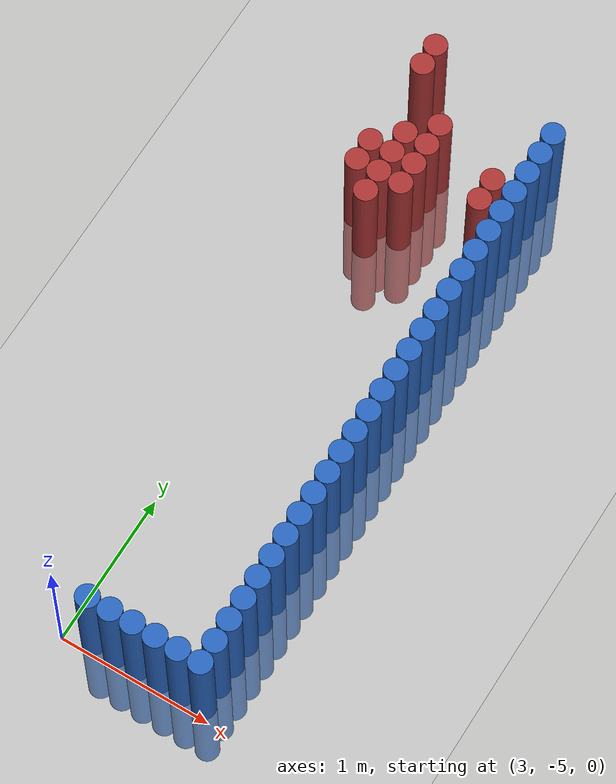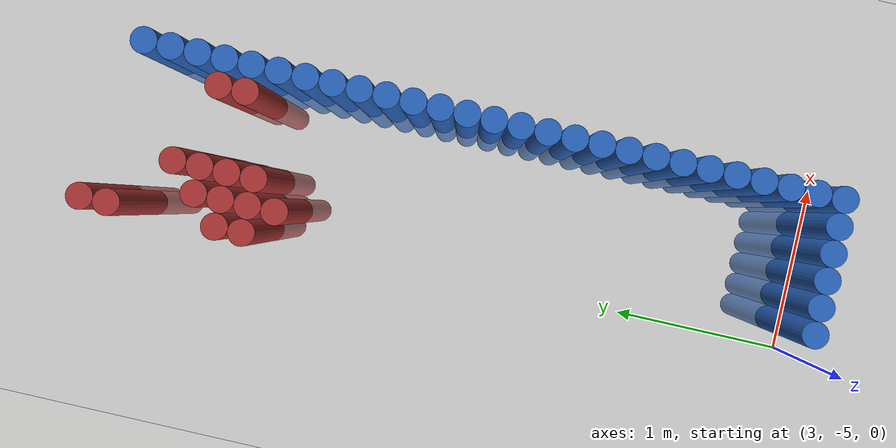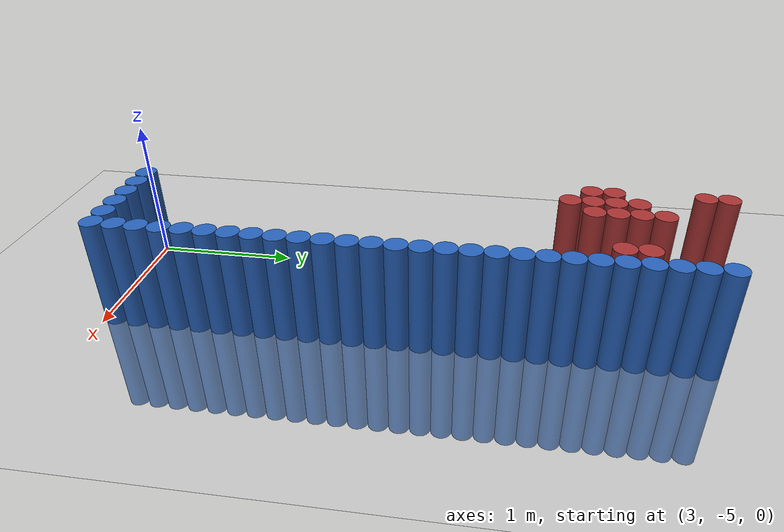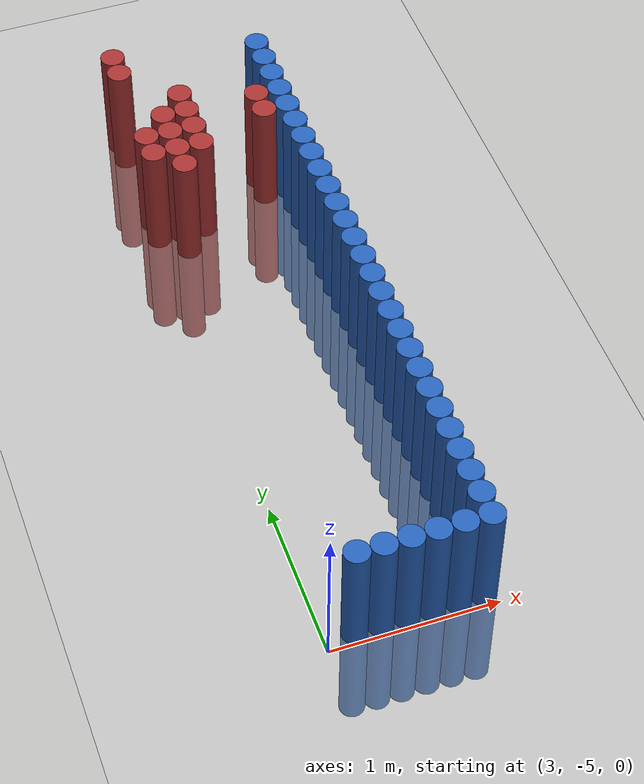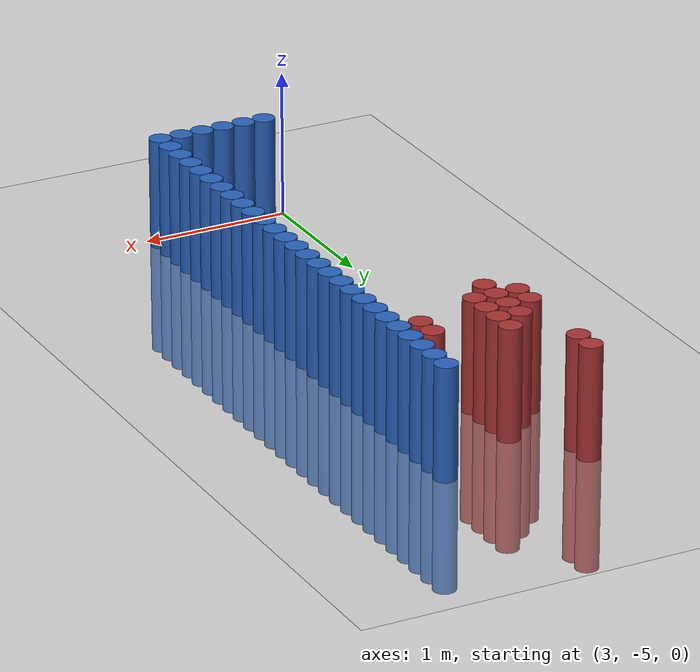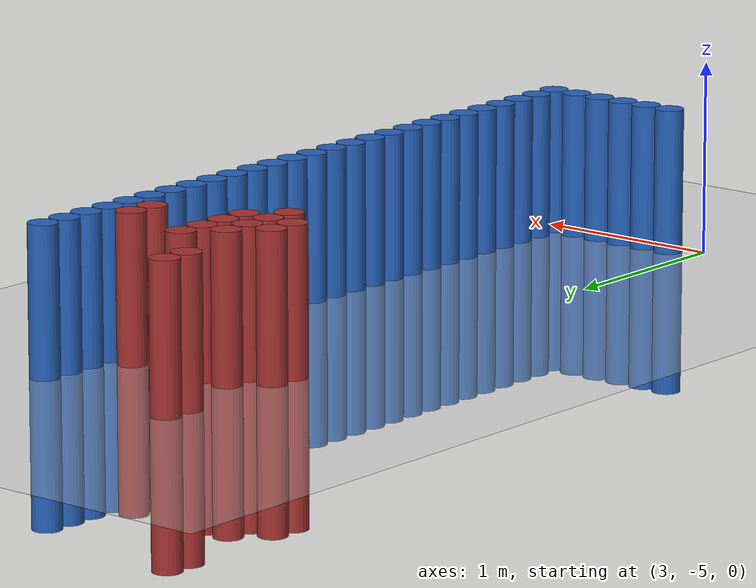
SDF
<sdf version="1.6">
 <world name="default">
  <model name="ground_plane">
   <static>1</static>
   <link name="link">
    <collision name="collision">
     <geometry><plane><normal>0 0 1</normal><size>100 100</size></plane></geometry>
     <surface><friction><ode><mu>100</mu><mu2>50</mu2></ode></friction></surface>
    </collision>
    <visual name="visual">
     <cast_shadows>0</cast_shadows>
     <geometry><plane><normal>0 0 1</normal><size>100 100</size></plane></geometry>
     <material>
      <script><uri>file://media/materials/scripts/gazebo.material</uri><name>Gazebo/Grey</name></script>
     </material>
    </visual>
   </link>
  </model>
  <model name="unit_cylinder_0">
   <static>1</static>
   <pose>3.925000 -4.925000 0.000000 0.000000 0.000000 0.000000</pose>
   <link name="link">
    <inertial>
     <mass>1</mass>
     <inertia><ixx>0.145833</ixx><ixy>0</ixy><ixz>0</ixz><iyy>0.145833</iyy><iyz>0</iyz><izz>0.125</izz></inertia>
    </inertial>
    <collision name="collision">
     <geometry><cylinder><radius>0.075000</radius><length>1.5</length></cylinder></geometry>
    </collision>
    <visual name="visual">
     <geometry><cylinder><radius>0.075000</radius><length>1.5</length></cylinder></geometry>
     <material>
      <ambient>0.152000 0.379000 0.720000 1</ambient>
      <diffuse>0.152000 0.379000 0.720000 1</diffuse>
     </material>
     <material>
      <script><name>Gazebo/Grey</name><uri>file://media/materials/scripts/gazebo.material</uri></script>
     </material>
    </visual>
   </link>
  </model>
  <model name="unit_cylinder_1">
   <static>1</static>
   <pose>3.775000 -4.925000 0.000000 0.000000 0.000000 0.000000</pose>
   <link name="link">
    <inertial>
     <mass>1</mass>
     <inertia><ixx>0.145833</ixx><ixy>0</ixy><ixz>0</ixz><iyy>0.145833</iyy><iyz>0</iyz><izz>0.125</izz></inertia>
    </inertial>
    <collision name="collision">
     <geometry><cylinder><radius>0.075000</radius><length>1.5</length></cylinder></geometry>
    </collision>
    <visual name="visual">
     <geometry><cylinder><radius>0.075000</radius><length>1.5</length></cylinder></geometry>
     <material>
      <ambient>0.152000 0.379000 0.720000 1</ambient>
      <diffuse>0.152000 0.379000 0.720000 1</diffuse>
     </material>
     <material>
      <script><name>Gazebo/Grey</name><uri>file://media/materials/scripts/gazebo.material</uri></script>
     </material>
    </visual>
   </link>
  </model>
  <model name="unit_cylinder_2">
   <static>1</static>
   <pose>3.625000 -4.925000 0.000000 0.000000 0.000000 0.000000</pose>
   <link name="link">
    <inertial>
     <mass>1</mass>
     <inertia><ixx>0.145833</ixx><ixy>0</ixy><ixz>0</ixz><iyy>0.145833</iyy><iyz>0</iyz><izz>0.125</izz></inertia>
    </inertial>
    <collision name="collision">
     <geometry><cylinder><radius>0.075000</radius><length>1.5</length></cylinder></geometry>
    </collision>
    <visual name="visual">
     <geometry><cylinder><radius>0.075000</radius><length>1.5</length></cylinder></geometry>
     <material>
      <ambient>0.152000 0.379000 0.720000 1</ambient>
      <diffuse>0.152000 0.379000 0.720000 1</diffuse>
     </material>
     <material>
      <script><name>Gazebo/Grey</name><uri>file://media/materials/scripts/gazebo.material</uri></script>
     </material>
    </visual>
   </link>
  </model>
  <model name="unit_cylinder_3">
   <static>1</static>
   <pose>3.475000 -4.925000 0.000000 0.000000 0.000000 0.000000</pose>
   <link name="link">
    <inertial>
     <mass>1</mass>
     <inertia><ixx>0.145833</ixx><ixy>0</ixy><ixz>0</ixz><iyy>0.145833</iyy><iyz>0</iyz><izz>0.125</izz></inertia>
    </inertial>
    <collision name="collision">
     <geometry><cylinder><radius>0.075000</radius><length>1.5</length></cylinder></geometry>
    </collision>
    <visual name="visual">
     <geometry><cylinder><radius>0.075000</radius><length>1.5</length></cylinder></geometry>
     <material>
      <ambient>0.152000 0.379000 0.720000 1</ambient>
      <diffuse>0.152000 0.379000 0.720000 1</diffuse>
     </material>
     <material>
      <script><name>Gazebo/Grey</name><uri>file://media/materials/scripts/gazebo.material</uri></script>
     </material>
    </visual>
   </link>
  </model>
  <model name="unit_cylinder_4">
   <static>1</static>
   <pose>3.325000 -4.925000 0.000000 0.000000 0.000000 0.000000</pose>
   <link name="link">
    <inertial>
     <mass>1</mass>
     <inertia><ixx>0.145833</ixx><ixy>0</ixy><ixz>0</ixz><iyy>0.145833</iyy><iyz>0</iyz><izz>0.125</izz></inertia>
    </inertial>
    <collision name="collision">
     <geometry><cylinder><radius>0.075000</radius><length>1.5</length></cylinder></geometry>
    </collision>
    <visual name="visual">
     <geometry><cylinder><radius>0.075000</radius><length>1.5</length></cylinder></geometry>
     <material>
      <ambient>0.152000 0.379000 0.720000 1</ambient>
      <diffuse>0.152000 0.379000 0.720000 1</diffuse>
     </material>
     <material>
      <script><name>Gazebo/Grey</name><uri>file://media/materials/scripts/gazebo.material</uri></script>
     </material>
    </visual>
   </link>
  </model>
  <model name="unit_cylinder_5">
   <static>1</static>
   <pose>3.175000 -4.925000 0.000000 0.000000 0.000000 0.000000</pose>
   <link name="link">
    <inertial>
     <mass>1</mass>
     <inertia><ixx>0.145833</ixx><ixy>0</ixy><ixz>0</ixz><iyy>0.145833</iyy><iyz>0</iyz><izz>0.125</izz></inertia>
    </inertial>
    <collision name="collision">
     <geometry><cylinder><radius>0.075000</radius><length>1.5</length></cylinder></geometry>
    </collision>
    <visual name="visual">
     <geometry><cylinder><radius>0.075000</radius><length>1.5</length></cylinder></geometry>
     <material>
      <ambient>0.152000 0.379000 0.720000 1</ambient>
      <diffuse>0.152000 0.379000 0.720000 1</diffuse>
     </material>
     <material>
      <script><name>Gazebo/Grey</name><uri>file://media/materials/scripts/gazebo.material</uri></script>
     </material>
    </visual>
   </link>
  </model>
  <model name="unit_cylinder_50">
   <static>1</static>
   <pose>3.925000 -4.775000 0.000000 0.000000 0.000000 0.000000</pose>
   <link name="link">
    <inertial>
     <mass>1</mass>
     <inertia><ixx>0.145833</ixx><ixy>0</ixy><ixz>0</ixz><iyy>0.145833</iyy><iyz>0</iyz><izz>0.125</izz></inertia>
    </inertial>
    <collision name="collision">
     <geometry><cylinder><radius>0.075000</radius><length>1.5</length></cylinder></geometry>
    </collision>
    <visual name="visual">
     <geometry><cylinder><radius>0.075000</radius><length>1.5</length></cylinder></geometry>
     <material>
      <ambient>0.152000 0.379000 0.720000 1</ambient>
      <diffuse>0.152000 0.379000 0.720000 1</diffuse>
     </material>
     <material>
      <script><name>Gazebo/Grey</name><uri>file://media/materials/scripts/gazebo.material</uri></script>
     </material>
    </visual>
   </link>
  </model>
  <model name="unit_cylinder_52">
   <static>1</static>
   <pose>3.925000 -4.625000 0.000000 0.000000 0.000000 0.000000</pose>
   <link name="link">
    <inertial>
     <mass>1</mass>
     <inertia><ixx>0.145833</ixx><ixy>0</ixy><ixz>0</ixz><iyy>0.145833</iyy><iyz>0</iyz><izz>0.125</izz></inertia>
    </inertial>
    <collision name="collision">
     <geometry><cylinder><radius>0.075000</radius><length>1.5</length></cylinder></geometry>
    </collision>
    <visual name="visual">
     <geometry><cylinder><radius>0.075000</radius><length>1.5</length></cylinder></geometry>
     <material>
      <ambient>0.152000 0.379000 0.720000 1</ambient>
      <diffuse>0.152000 0.379000 0.720000 1</diffuse>
     </material>
     <material>
      <script><name>Gazebo/Grey</name><uri>file://media/materials/scripts/gazebo.material</uri></script>
     </material>
    </visual>
   </link>
  </model>
  <model name="unit_cylinder_54">
   <static>1</static>
   <pose>3.925000 -4.475000 0.000000 0.000000 0.000000 0.000000</pose>
   <link name="link">
    <inertial>
     <mass>1</mass>
     <inertia><ixx>0.145833</ixx><ixy>0</ixy><ixz>0</ixz><iyy>0.145833</iyy><iyz>0</iyz><izz>0.125</izz></inertia>
    </inertial>
    <collision name="collision">
     <geometry><cylinder><radius>0.075000</radius><length>1.5</length></cylinder></geometry>
    </collision>
    <visual name="visual">
     <geometry><cylinder><radius>0.075000</radius><length>1.5</length></cylinder></geometry>
     <material>
      <ambient>0.152000 0.379000 0.720000 1</ambient>
      <diffuse>0.152000 0.379000 0.720000 1</diffuse>
     </material>
     <material>
      <script><name>Gazebo/Grey</name><uri>file://media/materials/scripts/gazebo.material</uri></script>
     </material>
    </visual>
   </link>
  </model>
  <model name="unit_cylinder_56">
   <static>1</static>
   <pose>3.925000 -4.325000 0.000000 0.000000 0.000000 0.000000</pose>
   <link name="link">
    <inertial>
     <mass>1</mass>
     <inertia><ixx>0.145833</ixx><ixy>0</ixy><ixz>0</ixz><iyy>0.145833</iyy><iyz>0</iyz><izz>0.125</izz></inertia>
    </inertial>
    <collision name="collision">
     <geometry><cylinder><radius>0.075000</radius><length>1.5</length></cylinder></geometry>
    </collision>
    <visual name="visual">
     <geometry><cylinder><radius>0.075000</radius><length>1.5</length></cylinder></geometry>
     <material>
      <ambient>0.152000 0.379000 0.720000 1</ambient>
      <diffuse>0.152000 0.379000 0.720000 1</diffuse>
     </material>
     <material>
      <script><name>Gazebo/Grey</name><uri>file://media/materials/scripts/gazebo.material</uri></script>
     </material>
    </visual>
   </link>
  </model>
  <model name="unit_cylinder_58">
   <static>1</static>
   <pose>3.925000 -4.175000 0.000000 0.000000 0.000000 0.000000</pose>
   <link name="link">
    <inertial>
     <mass>1</mass>
     <inertia><ixx>0.145833</ixx><ixy>0</ixy><ixz>0</ixz><iyy>0.145833</iyy><iyz>0</iyz><izz>0.125</izz></inertia>
    </inertial>
    <collision name="collision">
     <geometry><cylinder><radius>0.075000</radius><length>1.5</length></cylinder></geometry>
    </collision>
    <visual name="visual">
     <geometry><cylinder><radius>0.075000</radius><length>1.5</length></cylinder></geometry>
     <material>
      <ambient>0.152000 0.379000 0.720000 1</ambient>
      <diffuse>0.152000 0.379000 0.720000 1</diffuse>
     </material>
     <material>
      <script><name>Gazebo/Grey</name><uri>file://media/materials/scripts/gazebo.material</uri></script>
     </material>
    </visual>
   </link>
  </model>
  <model name="unit_cylinder_60">
   <static>1</static>
   <pose>3.925000 -4.025000 0.000000 0.000000 0.000000 0.000000</pose>
   <link name="link">
    <inertial>
     <mass>1</mass>
     <inertia><ixx>0.145833</ixx><ixy>0</ixy><ixz>0</ixz><iyy>0.145833</iyy><iyz>0</iyz><izz>0.125</izz></inertia>
    </inertial>
    <collision name="collision">
     <geometry><cylinder><radius>0.075000</radius><length>1.5</length></cylinder></geometry>
    </collision>
    <visual name="visual">
     <geometry><cylinder><radius>0.075000</radius><length>1.5</length></cylinder></geometry>
     <material>
      <ambient>0.152000 0.379000 0.720000 1</ambient>
      <diffuse>0.152000 0.379000 0.720000 1</diffuse>
     </material>
     <material>
      <script><name>Gazebo/Grey</name><uri>file://media/materials/scripts/gazebo.material</uri></script>
     </material>
    </visual>
   </link>
  </model>
  <model name="unit_cylinder_62">
   <static>1</static>
   <pose>3.925000 -3.875000 0.000000 0.000000 0.000000 0.000000</pose>
   <link name="link">
    <inertial>
     <mass>1</mass>
     <inertia><ixx>0.145833</ixx><ixy>0</ixy><ixz>0</ixz><iyy>0.145833</iyy><iyz>0</iyz><izz>0.125</izz></inertia>
    </inertial>
    <collision name="collision">
     <geometry><cylinder><radius>0.075000</radius><length>1.5</length></cylinder></geometry>
    </collision>
    <visual name="visual">
     <geometry><cylinder><radius>0.075000</radius><length>1.5</length></cylinder></geometry>
     <material>
      <ambient>0.152000 0.379000 0.720000 1</ambient>
      <diffuse>0.152000 0.379000 0.720000 1</diffuse>
     </material>
     <material>
      <script><name>Gazebo/Grey</name><uri>file://media/materials/scripts/gazebo.material</uri></script>
     </material>
    </visual>
   </link>
  </model>
  <model name="unit_cylinder_64">
   <static>1</static>
   <pose>3.925000 -3.725000 0.000000 0.000000 0.000000 0.000000</pose>
   <link name="link">
    <inertial>
     <mass>1</mass>
     <inertia><ixx>0.145833</ixx><ixy>0</ixy><ixz>0</ixz><iyy>0.145833</iyy><iyz>0</iyz><izz>0.125</izz></inertia>
    </inertial>
    <collision name="collision">
     <geometry><cylinder><radius>0.075000</radius><length>1.5</length></cylinder></geometry>
    </collision>
    <visual name="visual">
     <geometry><cylinder><radius>0.075000</radius><length>1.5</length></cylinder></geometry>
     <material>
      <ambient>0.152000 0.379000 0.720000 1</ambient>
      <diffuse>0.152000 0.379000 0.720000 1</diffuse>
     </material>
     <material>
      <script><name>Gazebo/Grey</name><uri>file://media/materials/scripts/gazebo.material</uri></script>
     </material>
    </visual>
   </link>
  </model>
  <model name="unit_cylinder_66">
   <static>1</static>
   <pose>3.925000 -3.575000 0.000000 0.000000 0.000000 0.000000</pose>
   <link name="link">
    <inertial>
     <mass>1</mass>
     <inertia><ixx>0.145833</ixx><ixy>0</ixy><ixz>0</ixz><iyy>0.145833</iyy><iyz>0</iyz><izz>0.125</izz></inertia>
    </inertial>
    <collision name="collision">
     <geometry><cylinder><radius>0.075000</radius><length>1.5</length></cylinder></geometry>
    </collision>
    <visual name="visual">
     <geometry><cylinder><radius>0.075000</radius><length>1.5</length></cylinder></geometry>
     <material>
      <ambient>0.152000 0.379000 0.720000 1</ambient>
      <diffuse>0.152000 0.379000 0.720000 1</diffuse>
     </material>
     <material>
      <script><name>Gazebo/Grey</name><uri>file://media/materials/scripts/gazebo.material</uri></script>
     </material>
    </visual>
   </link>
  </model>
  <model name="unit_cylinder_68">
   <static>1</static>
   <pose>3.925000 -3.425000 0.000000 0.000000 0.000000 0.000000</pose>
   <link name="link">
    <inertial>
     <mass>1</mass>
     <inertia><ixx>0.145833</ixx><ixy>0</ixy><ixz>0</ixz><iyy>0.145833</iyy><iyz>0</iyz><izz>0.125</izz></inertia>
    </inertial>
    <collision name="collision">
     <geometry><cylinder><radius>0.075000</radius><length>1.5</length></cylinder></geometry>
    </collision>
    <visual name="visual">
     <geometry><cylinder><radius>0.075000</radius><length>1.5</length></cylinder></geometry>
     <material>
      <ambient>0.152000 0.379000 0.720000 1</ambient>
      <diffuse>0.152000 0.379000 0.720000 1</diffuse>
     </material>
     <material>
      <script><name>Gazebo/Grey</name><uri>file://media/materials/scripts/gazebo.material</uri></script>
     </material>
    </visual>
   </link>
  </model>
  <model name="unit_cylinder_70">
   <static>1</static>
   <pose>3.925000 -3.275000 0.000000 0.000000 0.000000 0.000000</pose>
   <link name="link">
    <inertial>
     <mass>1</mass>
     <inertia><ixx>0.145833</ixx><ixy>0</ixy><ixz>0</ixz><iyy>0.145833</iyy><iyz>0</iyz><izz>0.125</izz></inertia>
    </inertial>
    <collision name="collision">
     <geometry><cylinder><radius>0.075000</radius><length>1.5</length></cylinder></geometry>
    </collision>
    <visual name="visual">
     <geometry><cylinder><radius>0.075000</radius><length>1.5</length></cylinder></geometry>
     <material>
      <ambient>0.152000 0.379000 0.720000 1</ambient>
      <diffuse>0.152000 0.379000 0.720000 1</diffuse>
     </material>
     <material>
      <script><name>Gazebo/Grey</name><uri>file://media/materials/scripts/gazebo.material</uri></script>
     </material>
    </visual>
   </link>
  </model>
  <model name="unit_cylinder_72">
   <static>1</static>
   <pose>3.925000 -3.125000 0.000000 0.000000 0.000000 0.000000</pose>
   <link name="link">
    <inertial>
     <mass>1</mass>
     <inertia><ixx>0.145833</ixx><ixy>0</ixy><ixz>0</ixz><iyy>0.145833</iyy><iyz>0</iyz><izz>0.125</izz></inertia>
    </inertial>
    <collision name="collision">
     <geometry><cylinder><radius>0.075000</radius><length>1.5</length></cylinder></geometry>
    </collision>
    <visual name="visual">
     <geometry><cylinder><radius>0.075000</radius><length>1.5</length></cylinder></geometry>
     <material>
      <ambient>0.152000 0.379000 0.720000 1</ambient>
      <diffuse>0.152000 0.379000 0.720000 1</diffuse>
     </material>
     <material>
      <script><name>Gazebo/Grey</name><uri>file://media/materials/scripts/gazebo.material</uri></script>
     </material>
    </visual>
   </link>
  </model>
  <model name="unit_cylinder_74">
   <static>1</static>
   <pose>3.925000 -2.975000 0.000000 0.000000 0.000000 0.000000</pose>
   <link name="link">
    <inertial>
     <mass>1</mass>
     <inertia><ixx>0.145833</ixx><ixy>0</ixy><ixz>0</ixz><iyy>0.145833</iyy><iyz>0</iyz><izz>0.125</izz></inertia>
    </inertial>
    <collision name="collision">
     <geometry><cylinder><radius>0.075000</radius><length>1.5</length></cylinder></geometry>
    </collision>
    <visual name="visual">
     <geometry><cylinder><radius>0.075000</radius><length>1.5</length></cylinder></geometry>
     <material>
      <ambient>0.152000 0.379000 0.720000 1</ambient>
      <diffuse>0.152000 0.379000 0.720000 1</diffuse>
     </material>
     <material>
      <script><name>Gazebo/Grey</name><uri>file://media/materials/scripts/gazebo.material</uri></script>
     </material>
    </visual>
   </link>
  </model>
  <model name="unit_cylinder_76">
   <static>1</static>
   <pose>3.925000 -2.825000 0.000000 0.000000 0.000000 0.000000</pose>
   <link name="link">
    <inertial>
     <mass>1</mass>
     <inertia><ixx>0.145833</ixx><ixy>0</ixy><ixz>0</ixz><iyy>0.145833</iyy><iyz>0</iyz><izz>0.125</izz></inertia>
    </inertial>
    <collision name="collision">
     <geometry><cylinder><radius>0.075000</radius><length>1.5</length></cylinder></geometry>
    </collision>
    <visual name="visual">
     <geometry><cylinder><radius>0.075000</radius><length>1.5</length></cylinder></geometry>
     <material>
      <ambient>0.152000 0.379000 0.720000 1</ambient>
      <diffuse>0.152000 0.379000 0.720000 1</diffuse>
     </material>
     <material>
      <script><name>Gazebo/Grey</name><uri>file://media/materials/scripts/gazebo.material</uri></script>
     </material>
    </visual>
   </link>
  </model>
  <model name="unit_cylinder_78">
   <static>1</static>
   <pose>3.925000 -2.675000 0.000000 0.000000 0.000000 0.000000</pose>
   <link name="link">
    <inertial>
     <mass>1</mass>
     <inertia><ixx>0.145833</ixx><ixy>0</ixy><ixz>0</ixz><iyy>0.145833</iyy><iyz>0</iyz><izz>0.125</izz></inertia>
    </inertial>
    <collision name="collision">
     <geometry><cylinder><radius>0.075000</radius><length>1.5</length></cylinder></geometry>
    </collision>
    <visual name="visual">
     <geometry><cylinder><radius>0.075000</radius><length>1.5</length></cylinder></geometry>
     <material>
      <ambient>0.152000 0.379000 0.720000 1</ambient>
      <diffuse>0.152000 0.379000 0.720000 1</diffuse>
     </material>
     <material>
      <script><name>Gazebo/Grey</name><uri>file://media/materials/scripts/gazebo.material</uri></script>
     </material>
    </visual>
   </link>
  </model>
  <model name="unit_cylinder_80">
   <static>1</static>
   <pose>3.925000 -2.525000 0.000000 0.000000 0.000000 0.000000</pose>
   <link name="link">
    <inertial>
     <mass>1</mass>
     <inertia><ixx>0.145833</ixx><ixy>0</ixy><ixz>0</ixz><iyy>0.145833</iyy><iyz>0</iyz><izz>0.125</izz></inertia>
    </inertial>
    <collision name="collision">
     <geometry><cylinder><radius>0.075000</radius><length>1.5</length></cylinder></geometry>
    </collision>
    <visual name="visual">
     <geometry><cylinder><radius>0.075000</radius><length>1.5</length></cylinder></geometry>
     <material>
      <ambient>0.152000 0.379000 0.720000 1</ambient>
      <diffuse>0.152000 0.379000 0.720000 1</diffuse>
     </material>
     <material>
      <script><name>Gazebo/Grey</name><uri>file://media/materials/scripts/gazebo.material</uri></script>
     </material>
    </visual>
   </link>
  </model>
  <model name="unit_cylinder_82">
   <static>1</static>
   <pose>3.925000 -2.375000 0.000000 0.000000 0.000000 0.000000</pose>
   <link name="link">
    <inertial>
     <mass>1</mass>
     <inertia><ixx>0.145833</ixx><ixy>0</ixy><ixz>0</ixz><iyy>0.145833</iyy><iyz>0</iyz><izz>0.125</izz></inertia>
    </inertial>
    <collision name="collision">
     <geometry><cylinder><radius>0.075000</radius><length>1.5</length></cylinder></geometry>
    </collision>
    <visual name="visual">
     <geometry><cylinder><radius>0.075000</radius><length>1.5</length></cylinder></geometry>
     <material>
      <ambient>0.152000 0.379000 0.720000 1</ambient>
      <diffuse>0.152000 0.379000 0.720000 1</diffuse>
     </material>
     <material>
      <script><name>Gazebo/Grey</name><uri>file://media/materials/scripts/gazebo.material</uri></script>
     </material>
    </visual>
   </link>
  </model>
  <model name="unit_cylinder_84">
   <static>1</static>
   <pose>3.925000 -2.225000 0.000000 0.000000 0.000000 0.000000</pose>
   <link name="link">
    <inertial>
     <mass>1</mass>
     <inertia><ixx>0.145833</ixx><ixy>0</ixy><ixz>0</ixz><iyy>0.145833</iyy><iyz>0</iyz><izz>0.125</izz></inertia>
    </inertial>
    <collision name="collision">
     <geometry><cylinder><radius>0.075000</radius><length>1.5</length></cylinder></geometry>
    </collision>
    <visual name="visual">
     <geometry><cylinder><radius>0.075000</radius><length>1.5</length></cylinder></geometry>
     <material>
      <ambient>0.152000 0.379000 0.720000 1</ambient>
      <diffuse>0.152000 0.379000 0.720000 1</diffuse>
     </material>
     <material>
      <script><name>Gazebo/Grey</name><uri>file://media/materials/scripts/gazebo.material</uri></script>
     </material>
    </visual>
   </link>
  </model>
  <model name="unit_cylinder_86">
   <static>1</static>
   <pose>3.925000 -2.075000 0.000000 0.000000 0.000000 0.000000</pose>
   <link name="link">
    <inertial>
     <mass>1</mass>
     <inertia><ixx>0.145833</ixx><ixy>0</ixy><ixz>0</ixz><iyy>0.145833</iyy><iyz>0</iyz><izz>0.125</izz></inertia>
    </inertial>
    <collision name="collision">
     <geometry><cylinder><radius>0.075000</radius><length>1.5</length></cylinder></geometry>
    </collision>
    <visual name="visual">
     <geometry><cylinder><radius>0.075000</radius><length>1.5</length></cylinder></geometry>
     <material>
      <ambient>0.152000 0.379000 0.720000 1</ambient>
      <diffuse>0.152000 0.379000 0.720000 1</diffuse>
     </material>
     <material>
      <script><name>Gazebo/Grey</name><uri>file://media/materials/scripts/gazebo.material</uri></script>
     </material>
    </visual>
   </link>
  </model>
  <model name="unit_cylinder_88">
   <static>1</static>
   <pose>3.925000 -1.925000 0.000000 0.000000 0.000000 0.000000</pose>
   <link name="link">
    <inertial>
     <mass>1</mass>
     <inertia><ixx>0.145833</ixx><ixy>0</ixy><ixz>0</ixz><iyy>0.145833</iyy><iyz>0</iyz><izz>0.125</izz></inertia>
    </inertial>
    <collision name="collision">
     <geometry><cylinder><radius>0.075000</radius><length>1.5</length></cylinder></geometry>
    </collision>
    <visual name="visual">
     <geometry><cylinder><radius>0.075000</radius><length>1.5</length></cylinder></geometry>
     <material>
      <ambient>0.152000 0.379000 0.720000 1</ambient>
      <diffuse>0.152000 0.379000 0.720000 1</diffuse>
     </material>
     <material>
      <script><name>Gazebo/Grey</name><uri>file://media/materials/scripts/gazebo.material</uri></script>
     </material>
    </visual>
   </link>
  </model>
  <model name="unit_cylinder_90">
   <static>1</static>
   <pose>3.925000 -1.775000 0.000000 0.000000 0.000000 0.000000</pose>
   <link name="link">
    <inertial>
     <mass>1</mass>
     <inertia><ixx>0.145833</ixx><ixy>0</ixy><ixz>0</ixz><iyy>0.145833</iyy><iyz>0</iyz><izz>0.125</izz></inertia>
    </inertial>
    <collision name="collision">
     <geometry><cylinder><radius>0.075000</radius><length>1.5</length></cylinder></geometry>
    </collision>
    <visual name="visual">
     <geometry><cylinder><radius>0.075000</radius><length>1.5</length></cylinder></geometry>
     <material>
      <ambient>0.152000 0.379000 0.720000 1</ambient>
      <diffuse>0.152000 0.379000 0.720000 1</diffuse>
     </material>
     <material>
      <script><name>Gazebo/Grey</name><uri>file://media/materials/scripts/gazebo.material</uri></script>
     </material>
    </visual>
   </link>
  </model>
  <model name="unit_cylinder_92">
   <static>1</static>
   <pose>3.925000 -1.625000 0.000000 0.000000 0.000000 0.000000</pose>
   <link name="link">
    <inertial>
     <mass>1</mass>
     <inertia><ixx>0.145833</ixx><ixy>0</ixy><ixz>0</ixz><iyy>0.145833</iyy><iyz>0</iyz><izz>0.125</izz></inertia>
    </inertial>
    <collision name="collision">
     <geometry><cylinder><radius>0.075000</radius><length>1.5</length></cylinder></geometry>
    </collision>
    <visual name="visual">
     <geometry><cylinder><radius>0.075000</radius><length>1.5</length></cylinder></geometry>
     <material>
      <ambient>0.152000 0.379000 0.720000 1</ambient>
      <diffuse>0.152000 0.379000 0.720000 1</diffuse>
     </material>
     <material>
      <script><name>Gazebo/Grey</name><uri>file://media/materials/scripts/gazebo.material</uri></script>
     </material>
    </visual>
   </link>
  </model>
  <model name="unit_cylinder_94">
   <static>1</static>
   <pose>3.925000 -1.475000 0.000000 0.000000 0.000000 0.000000</pose>
   <link name="link">
    <inertial>
     <mass>1</mass>
     <inertia><ixx>0.145833</ixx><ixy>0</ixy><ixz>0</ixz><iyy>0.145833</iyy><iyz>0</iyz><izz>0.125</izz></inertia>
    </inertial>
    <collision name="collision">
     <geometry><cylinder><radius>0.075000</radius><length>1.5</length></cylinder></geometry>
    </collision>
    <visual name="visual">
     <geometry><cylinder><radius>0.075000</radius><length>1.5</length></cylinder></geometry>
     <material>
      <ambient>0.152000 0.379000 0.720000 1</ambient>
      <diffuse>0.152000 0.379000 0.720000 1</diffuse>
     </material>
     <material>
      <script><name>Gazebo/Grey</name><uri>file://media/materials/scripts/gazebo.material</uri></script>
     </material>
    </visual>
   </link>
  </model>
  <model name="unit_cylinder_96">
   <static>1</static>
   <pose>3.925000 -1.325000 0.000000 0.000000 0.000000 0.000000</pose>
   <link name="link">
    <inertial>
     <mass>1</mass>
     <inertia><ixx>0.145833</ixx><ixy>0</ixy><ixz>0</ixz><iyy>0.145833</iyy><iyz>0</iyz><izz>0.125</izz></inertia>
    </inertial>
    <collision name="collision">
     <geometry><cylinder><radius>0.075000</radius><length>1.5</length></cylinder></geometry>
    </collision>
    <visual name="visual">
     <geometry><cylinder><radius>0.075000</radius><length>1.5</length></cylinder></geometry>
     <material>
      <ambient>0.152000 0.379000 0.720000 1</ambient>
      <diffuse>0.152000 0.379000 0.720000 1</diffuse>
     </material>
     <material>
      <script><name>Gazebo/Grey</name><uri>file://media/materials/scripts/gazebo.material</uri></script>
     </material>
    </visual>
   </link>
  </model>
  <model name="unit_cylinder_98">
   <static>1</static>
   <pose>3.925000 -1.175000 0.000000 0.000000 0.000000 0.000000</pose>
   <link name="link">
    <inertial>
     <mass>1</mass>
     <inertia><ixx>0.145833</ixx><ixy>0</ixy><ixz>0</ixz><iyy>0.145833</iyy><iyz>0</iyz><izz>0.125</izz></inertia>
    </inertial>
    <collision name="collision">
     <geometry><cylinder><radius>0.075000</radius><length>1.5</length></cylinder></geometry>
    </collision>
    <visual name="visual">
     <geometry><cylinder><radius>0.075000</radius><length>1.5</length></cylinder></geometry>
     <material>
      <ambient>0.152000 0.379000 0.720000 1</ambient>
      <diffuse>0.152000 0.379000 0.720000 1</diffuse>
     </material>
     <material>
      <script><name>Gazebo/Grey</name><uri>file://media/materials/scripts/gazebo.material</uri></script>
     </material>
    </visual>
   </link>
  </model>
  <model name="unit_cylinder_100">
   <static>1</static>
   <pose>3.925000 -1.025000 0.000000 0.000000 0.000000 0.000000</pose>
   <link name="link">
    <inertial>
     <mass>1</mass>
     <inertia><ixx>0.145833</ixx><ixy>0</ixy><ixz>0</ixz><iyy>0.145833</iyy><iyz>0</iyz><izz>0.125</izz></inertia>
    </inertial>
    <collision name="collision">
     <geometry><cylinder><radius>0.075000</radius><length>1.5</length></cylinder></geometry>
    </collision>
    <visual name="visual">
     <geometry><cylinder><radius>0.075000</radius><length>1.5</length></cylinder></geometry>
     <material>
      <ambient>0.152000 0.379000 0.720000 1</ambient>
      <diffuse>0.152000 0.379000 0.720000 1</diffuse>
     </material>
     <material>
      <script><name>Gazebo/Grey</name><uri>file://media/materials/scripts/gazebo.material</uri></script>
     </material>
    </visual>
   </link>
  </model>
  <model name="unit_cylinder_584">
   <static>1</static>
   <pose>3.025000 -1.775000 0.000000 0.000000 0.000000 0.000000</pose>
   <link name="link">
    <inertial>
     <mass>1</mass>
     <inertia><ixx>0.145833</ixx><ixy>0</ixy><ixz>0</ixz><iyy>0.145833</iyy><iyz>0</iyz><izz>0.125</izz></inertia>
    </inertial>
    <collision name="collision">
     <geometry><cylinder><radius>0.075000</radius><length>1.5</length></cylinder></geometry>
    </collision>
    <visual name="visual">
     <geometry><cylinder><radius>0.075000</radius><length>1.5</length></cylinder></geometry>
     <material>
      <ambient>0.648000 0.192000 0.192000 1</ambient>
      <diffuse>0.648000 0.192000 0.192000 1</diffuse>
     </material>
     <material>
      <script><name>Gazebo/Grey</name><uri>file://media/materials/scripts/gazebo.material</uri></script>
     </material>
    </visual>
   </link>
  </model>
  <model name="unit_cylinder_585">
   <static>1</static>
   <pose>3.025000 -1.625000 0.000000 0.000000 0.000000 0.000000</pose>
   <link name="link">
    <inertial>
     <mass>1</mass>
     <inertia><ixx>0.145833</ixx><ixy>0</ixy><ixz>0</ixz><iyy>0.145833</iyy><iyz>0</iyz><izz>0.125</izz></inertia>
    </inertial>
    <collision name="collision">
     <geometry><cylinder><radius>0.075000</radius><length>1.5</length></cylinder></geometry>
    </collision>
    <visual name="visual">
     <geometry><cylinder><radius>0.075000</radius><length>1.5</length></cylinder></geometry>
     <material>
      <ambient>0.648000 0.192000 0.192000 1</ambient>
      <diffuse>0.648000 0.192000 0.192000 1</diffuse>
     </material>
     <material>
      <script><name>Gazebo/Grey</name><uri>file://media/materials/scripts/gazebo.material</uri></script>
     </material>
    </visual>
   </link>
  </model>
  <model name="unit_cylinder_586">
   <static>1</static>
   <pose>3.025000 -1.025000 0.000000 0.000000 0.000000 0.000000</pose>
   <link name="link">
    <inertial>
     <mass>1</mass>
     <inertia><ixx>0.145833</ixx><ixy>0</ixy><ixz>0</ixz><iyy>0.145833</iyy><iyz>0</iyz><izz>0.125</izz></inertia>
    </inertial>
    <collision name="collision">
     <geometry><cylinder><radius>0.075000</radius><length>1.5</length></cylinder></geometry>
    </collision>
    <visual name="visual">
     <geometry><cylinder><radius>0.075000</radius><length>1.5</length></cylinder></geometry>
     <material>
      <ambient>0.648000 0.192000 0.192000 1</ambient>
      <diffuse>0.648000 0.192000 0.192000 1</diffuse>
     </material>
     <material>
      <script><name>Gazebo/Grey</name><uri>file://media/materials/scripts/gazebo.material</uri></script>
     </material>
    </visual>
   </link>
  </model>
  <model name="unit_cylinder_587">
   <static>1</static>
   <pose>3.025000 -0.875000 0.000000 0.000000 0.000000 0.000000</pose>
   <link name="link">
    <inertial>
     <mass>1</mass>
     <inertia><ixx>0.145833</ixx><ixy>0</ixy><ixz>0</ixz><iyy>0.145833</iyy><iyz>0</iyz><izz>0.125</izz></inertia>
    </inertial>
    <collision name="collision">
     <geometry><cylinder><radius>0.075000</radius><length>1.5</length></cylinder></geometry>
    </collision>
    <visual name="visual">
     <geometry><cylinder><radius>0.075000</radius><length>1.5</length></cylinder></geometry>
     <material>
      <ambient>0.648000 0.192000 0.192000 1</ambient>
      <diffuse>0.648000 0.192000 0.192000 1</diffuse>
     </material>
     <material>
      <script><name>Gazebo/Grey</name><uri>file://media/materials/scripts/gazebo.material</uri></script>
     </material>
    </visual>
   </link>
  </model>
  <model name="unit_cylinder_598">
   <static>1</static>
   <pose>3.175000 -1.925000 0.000000 0.000000 0.000000 0.000000</pose>
   <link name="link">
    <inertial>
     <mass>1</mass>
     <inertia><ixx>0.145833</ixx><ixy>0</ixy><ixz>0</ixz><iyy>0.145833</iyy><iyz>0</iyz><izz>0.125</izz></inertia>
    </inertial>
    <collision name="collision">
     <geometry><cylinder><radius>0.075000</radius><length>1.5</length></cylinder></geometry>
    </collision>
    <visual name="visual">
     <geometry><cylinder><radius>0.075000</radius><length>1.5</length></cylinder></geometry>
     <material>
      <ambient>0.648000 0.192000 0.192000 1</ambient>
      <diffuse>0.648000 0.192000 0.192000 1</diffuse>
     </material>
     <material>
      <script><name>Gazebo/Grey</name><uri>file://media/materials/scripts/gazebo.material</uri></script>
     </material>
    </visual>
   </link>
  </model>
  <model name="unit_cylinder_599">
   <static>1</static>
   <pose>3.175000 -1.775000 0.000000 0.000000 0.000000 0.000000</pose>
   <link name="link">
    <inertial>
     <mass>1</mass>
     <inertia><ixx>0.145833</ixx><ixy>0</ixy><ixz>0</ixz><iyy>0.145833</iyy><iyz>0</iyz><izz>0.125</izz></inertia>
    </inertial>
    <collision name="collision">
     <geometry><cylinder><radius>0.075000</radius><length>1.5</length></cylinder></geometry>
    </collision>
    <visual name="visual">
     <geometry><cylinder><radius>0.075000</radius><length>1.5</length></cylinder></geometry>
     <material>
      <ambient>0.648000 0.192000 0.192000 1</ambient>
      <diffuse>0.648000 0.192000 0.192000 1</diffuse>
     </material>
     <material>
      <script><name>Gazebo/Grey</name><uri>file://media/materials/scripts/gazebo.material</uri></script>
     </material>
    </visual>
   </link>
  </model>
  <model name="unit_cylinder_600">
   <static>1</static>
   <pose>3.175000 -1.625000 0.000000 0.000000 0.000000 0.000000</pose>
   <link name="link">
    <inertial>
     <mass>1</mass>
     <inertia><ixx>0.145833</ixx><ixy>0</ixy><ixz>0</ixz><iyy>0.145833</iyy><iyz>0</iyz><izz>0.125</izz></inertia>
    </inertial>
    <collision name="collision">
     <geometry><cylinder><radius>0.075000</radius><length>1.5</length></cylinder></geometry>
    </collision>
    <visual name="visual">
     <geometry><cylinder><radius>0.075000</radius><length>1.5</length></cylinder></geometry>
     <material>
      <ambient>0.648000 0.192000 0.192000 1</ambient>
      <diffuse>0.648000 0.192000 0.192000 1</diffuse>
     </material>
     <material>
      <script><name>Gazebo/Grey</name><uri>file://media/materials/scripts/gazebo.material</uri></script>
     </material>
    </visual>
   </link>
  </model>
  <model name="unit_cylinder_601">
   <static>1</static>
   <pose>3.175000 -1.475000 0.000000 0.000000 0.000000 0.000000</pose>
   <link name="link">
    <inertial>
     <mass>1</mass>
     <inertia><ixx>0.145833</ixx><ixy>0</ixy><ixz>0</ixz><iyy>0.145833</iyy><iyz>0</iyz><izz>0.125</izz></inertia>
    </inertial>
    <collision name="collision">
     <geometry><cylinder><radius>0.075000</radius><length>1.5</length></cylinder></geometry>
    </collision>
    <visual name="visual">
     <geometry><cylinder><radius>0.075000</radius><length>1.5</length></cylinder></geometry>
     <material>
      <ambient>0.648000 0.192000 0.192000 1</ambient>
      <diffuse>0.648000 0.192000 0.192000 1</diffuse>
     </material>
     <material>
      <script><name>Gazebo/Grey</name><uri>file://media/materials/scripts/gazebo.material</uri></script>
     </material>
    </visual>
   </link>
  </model>
  <model name="unit_cylinder_616">
   <static>1</static>
   <pose>3.325000 -1.775000 0.000000 0.000000 0.000000 0.000000</pose>
   <link name="link">
    <inertial>
     <mass>1</mass>
     <inertia><ixx>0.145833</ixx><ixy>0</ixy><ixz>0</ixz><iyy>0.145833</iyy><iyz>0</iyz><izz>0.125</izz></inertia>
    </inertial>
    <collision name="collision">
     <geometry><cylinder><radius>0.075000</radius><length>1.5</length></cylinder></geometry>
    </collision>
    <visual name="visual">
     <geometry><cylinder><radius>0.075000</radius><length>1.5</length></cylinder></geometry>
     <material>
      <ambient>0.648000 0.192000 0.192000 1</ambient>
      <diffuse>0.648000 0.192000 0.192000 1</diffuse>
     </material>
     <material>
      <script><name>Gazebo/Grey</name><uri>file://media/materials/scripts/gazebo.material</uri></script>
     </material>
    </visual>
   </link>
  </model>
  <model name="unit_cylinder_617">
   <static>1</static>
   <pose>3.325000 -1.625000 0.000000 0.000000 0.000000 0.000000</pose>
   <link name="link">
    <inertial>
     <mass>1</mass>
     <inertia><ixx>0.145833</ixx><ixy>0</ixy><ixz>0</ixz><iyy>0.145833</iyy><iyz>0</iyz><izz>0.125</izz></inertia>
    </inertial>
    <collision name="collision">
     <geometry><cylinder><radius>0.075000</radius><length>1.5</length></cylinder></geometry>
    </collision>
    <visual name="visual">
     <geometry><cylinder><radius>0.075000</radius><length>1.5</length></cylinder></geometry>
     <material>
      <ambient>0.648000 0.192000 0.192000 1</ambient>
      <diffuse>0.648000 0.192000 0.192000 1</diffuse>
     </material>
     <material>
      <script><name>Gazebo/Grey</name><uri>file://media/materials/scripts/gazebo.material</uri></script>
     </material>
    </visual>
   </link>
  </model>
  <model name="unit_cylinder_618">
   <static>1</static>
   <pose>3.325000 -1.475000 0.000000 0.000000 0.000000 0.000000</pose>
   <link name="link">
    <inertial>
     <mass>1</mass>
     <inertia><ixx>0.145833</ixx><ixy>0</ixy><ixz>0</ixz><iyy>0.145833</iyy><iyz>0</iyz><izz>0.125</izz></inertia>
    </inertial>
    <collision name="collision">
     <geometry><cylinder><radius>0.075000</radius><length>1.5</length></cylinder></geometry>
    </collision>
    <visual name="visual">
     <geometry><cylinder><radius>0.075000</radius><length>1.5</length></cylinder></geometry>
     <material>
      <ambient>0.648000 0.192000 0.192000 1</ambient>
      <diffuse>0.648000 0.192000 0.192000 1</diffuse>
     </material>
     <material>
      <script><name>Gazebo/Grey</name><uri>file://media/materials/scripts/gazebo.material</uri></script>
     </material>
    </visual>
   </link>
  </model>
  <model name="unit_cylinder_619">
   <static>1</static>
   <pose>3.325000 -1.325000 0.000000 0.000000 0.000000 0.000000</pose>
   <link name="link">
    <inertial>
     <mass>1</mass>
     <inertia><ixx>0.145833</ixx><ixy>0</ixy><ixz>0</ixz><iyy>0.145833</iyy><iyz>0</iyz><izz>0.125</izz></inertia>
    </inertial>
    <collision name="collision">
     <geometry><cylinder><radius>0.075000</radius><length>1.5</length></cylinder></geometry>
    </collision>
    <visual name="visual">
     <geometry><cylinder><radius>0.075000</radius><length>1.5</length></cylinder></geometry>
     <material>
      <ambient>0.648000 0.192000 0.192000 1</ambient>
      <diffuse>0.648000 0.192000 0.192000 1</diffuse>
     </material>
     <material>
      <script><name>Gazebo/Grey</name><uri>file://media/materials/scripts/gazebo.material</uri></script>
     </material>
    </visual>
   </link>
  </model>
  <model name="unit_cylinder_653">
   <static>1</static>
   <pose>3.775000 -1.625000 0.000000 0.000000 0.000000 0.000000</pose>
   <link name="link">
    <inertial>
     <mass>1</mass>
     <inertia><ixx>0.145833</ixx><ixy>0</ixy><ixz>0</ixz><iyy>0.145833</iyy><iyz>0</iyz><izz>0.125</izz></inertia>
    </inertial>
    <collision name="collision">
     <geometry><cylinder><radius>0.075000</radius><length>1.5</length></cylinder></geometry>
    </collision>
    <visual name="visual">
     <geometry><cylinder><radius>0.075000</radius><length>1.5</length></cylinder></geometry>
     <material>
      <ambient>0.648000 0.192000 0.192000 1</ambient>
      <diffuse>0.648000 0.192000 0.192000 1</diffuse>
     </material>
     <material>
      <script><name>Gazebo/Grey</name><uri>file://media/materials/scripts/gazebo.material</uri></script>
     </material>
    </visual>
   </link>
  </model>
  <model name="unit_cylinder_654">
   <static>1</static>
   <pose>3.775000 -1.475000 0.000000 0.000000 0.000000 0.000000</pose>
   <link name="link">
    <inertial>
     <mass>1</mass>
     <inertia><ixx>0.145833</ixx><ixy>0</ixy><ixz>0</ixz><iyy>0.145833</iyy><iyz>0</iyz><izz>0.125</izz></inertia>
    </inertial>
    <collision name="collision">
     <geometry><cylinder><radius>0.075000</radius><length>1.5</length></cylinder></geometry>
    </collision>
    <visual name="visual">
     <geometry><cylinder><radius>0.075000</radius><length>1.5</length></cylinder></geometry>
     <material>
      <ambient>0.648000 0.192000 0.192000 1</ambient>
      <diffuse>0.648000 0.192000 0.192000 1</diffuse>
     </material>
     <material>
      <script><name>Gazebo/Grey</name><uri>file://media/materials/scripts/gazebo.material</uri></script>
     </material>
    </visual>
   </link>
  </model>
  <model name="unit_cylinder_684">
   <static>1</static>
   <pose>3.925000 -1.925000 0.000000 0.000000 0.000000 0.000000</pose>
   <link name="link">
    <inertial>
     <mass>1</mass>
     <inertia><ixx>0.145833</ixx><ixy>0</ixy><ixz>0</ixz><iyy>0.145833</iyy><iyz>0</iyz><izz>0.125</izz></inertia>
    </inertial>
    <collision name="collision">
     <geometry><cylinder><radius>0.075000</radius><length>1.5</length></cylinder></geometry>
    </collision>
    <visual name="visual">
     <geometry><cylinder><radius>0.075000</radius><length>1.5</length></cylinder></geometry>
     <material>
      <ambient>0.152000 0.379000 0.720000 1</ambient>
      <diffuse>0.152000 0.379000 0.720000 1</diffuse>
     </material>
     <material>
      <script><name>Gazebo/Grey</name><uri>file://media/materials/scripts/gazebo.material</uri></script>
     </material>
    </visual>
   </link>
  </model>
  <model name="unit_cylinder_685">
   <static>1</static>
   <pose>3.925000 -1.775000 0.000000 0.000000 0.000000 0.000000</pose>
   <link name="link">
    <inertial>
     <mass>1</mass>
     <inertia><ixx>0.145833</ixx><ixy>0</ixy><ixz>0</ixz><iyy>0.145833</iyy><iyz>0</iyz><izz>0.125</izz></inertia>
    </inertial>
    <collision name="collision">
     <geometry><cylinder><radius>0.075000</radius><length>1.5</length></cylinder></geometry>
    </collision>
    <visual name="visual">
     <geometry><cylinder><radius>0.075000</radius><length>1.5</length></cylinder></geometry>
     <material>
      <ambient>0.152000 0.379000 0.720000 1</ambient>
      <diffuse>0.152000 0.379000 0.720000 1</diffuse>
     </material>
     <material>
      <script><name>Gazebo/Grey</name><uri>file://media/materials/scripts/gazebo.material</uri></script>
     </material>
    </visual>
   </link>
  </model>
  <model name="unit_cylinder_686">
   <static>1</static>
   <pose>3.925000 -1.625000 0.000000 0.000000 0.000000 0.000000</pose>
   <link name="link">
    <inertial>
     <mass>1</mass>
     <inertia><ixx>0.145833</ixx><ixy>0</ixy><ixz>0</ixz><iyy>0.145833</iyy><iyz>0</iyz><izz>0.125</izz></inertia>
    </inertial>
    <collision name="collision">
     <geometry><cylinder><radius>0.075000</radius><length>1.5</length></cylinder></geometry>
    </collision>
    <visual name="visual">
     <geometry><cylinder><radius>0.075000</radius><length>1.5</length></cylinder></geometry>
     <material>
      <ambient>0.152000 0.379000 0.720000 1</ambient>
      <diffuse>0.152000 0.379000 0.720000 1</diffuse>
     </material>
     <material>
      <script><name>Gazebo/Grey</name><uri>file://media/materials/scripts/gazebo.material</uri></script>
     </material>
    </visual>
   </link>
  </model>
  <model name="unit_cylinder_687">
   <static>1</static>
   <pose>3.925000 -1.475000 0.000000 0.000000 0.000000 0.000000</pose>
   <link name="link">
    <inertial>
     <mass>1</mass>
     <inertia><ixx>0.145833</ixx><ixy>0</ixy><ixz>0</ixz><iyy>0.145833</iyy><iyz>0</iyz><izz>0.125</izz></inertia>
    </inertial>
    <collision name="collision">
     <geometry><cylinder><radius>0.075000</radius><length>1.5</length></cylinder></geometry>
    </collision>
    <visual name="visual">
     <geometry><cylinder><radius>0.075000</radius><length>1.5</length></cylinder></geometry>
     <material>
      <ambient>0.152000 0.379000 0.720000 1</ambient>
      <diffuse>0.152000 0.379000 0.720000 1</diffuse>
     </material>
     <material>
      <script><name>Gazebo/Grey</name><uri>file://media/materials/scripts/gazebo.material</uri></script>
     </material>
    </visual>
   </link>
  </model>
  <model name="unit_cylinder_688">
   <static>1</static>
   <pose>3.925000 -1.325000 0.000000 0.000000 0.000000 0.000000</pose>
   <link name="link">
    <inertial>
     <mass>1</mass>
     <inertia><ixx>0.145833</ixx><ixy>0</ixy><ixz>0</ixz><iyy>0.145833</iyy><iyz>0</iyz><izz>0.125</izz></inertia>
    </inertial>
    <collision name="collision">
     <geometry><cylinder><radius>0.075000</radius><length>1.5</length></cylinder></geometry>
    </collision>
    <visual name="visual">
     <geometry><cylinder><radius>0.075000</radius><length>1.5</length></cylinder></geometry>
     <material>
      <ambient>0.152000 0.379000 0.720000 1</ambient>
      <diffuse>0.152000 0.379000 0.720000 1</diffuse>
     </material>
     <material>
      <script><name>Gazebo/Grey</name><uri>file://media/materials/scripts/gazebo.material</uri></script>
     </material>
    </visual>
   </link>
  </model>
  <model name="unit_cylinder_689">
   <static>1</static>
   <pose>3.925000 -1.175000 0.000000 0.000000 0.000000 0.000000</pose>
   <link name="link">
    <inertial>
     <mass>1</mass>
     <inertia><ixx>0.145833</ixx><ixy>0</ixy><ixz>0</ixz><iyy>0.145833</iyy><iyz>0</iyz><izz>0.125</izz></inertia>
    </inertial>
    <collision name="collision">
     <geometry><cylinder><radius>0.075000</radius><length>1.5</length></cylinder></geometry>
    </collision>
    <visual name="visual">
     <geometry><cylinder><radius>0.075000</radius><length>1.5</length></cylinder></geometry>
     <material>
      <ambient>0.152000 0.379000 0.720000 1</ambient>
      <diffuse>0.152000 0.379000 0.720000 1</diffuse>
     </material>
     <material>
      <script><name>Gazebo/Grey</name><uri>file://media/materials/scripts/gazebo.material</uri></script>
     </material>
    </visual>
   </link>
  </model>
  <model name="unit_cylinder_690">
   <static>1</static>
   <pose>3.925000 -1.025000 0.000000 0.000000 0.000000 0.000000</pose>
   <link name="link">
    <inertial>
     <mass>1</mass>
     <inertia><ixx>0.145833</ixx><ixy>0</ixy><ixz>0</ixz><iyy>0.145833</iyy><iyz>0</iyz><izz>0.125</izz></inertia>
    </inertial>
    <collision name="collision">
     <geometry><cylinder><radius>0.075000</radius><length>1.5</length></cylinder></geometry>
    </collision>
    <visual name="visual">
     <geometry><cylinder><radius>0.075000</radius><length>1.5</length></cylinder></geometry>
     <material>
      <ambient>0.152000 0.379000 0.720000 1</ambient>
      <diffuse>0.152000 0.379000 0.720000 1</diffuse>
     </material>
     <material>
      <script><name>Gazebo/Grey</name><uri>file://media/materials/scripts/gazebo.material</uri></script>
     </material>
    </visual>
   </link>
  </model>
 </world>
</sdf>
